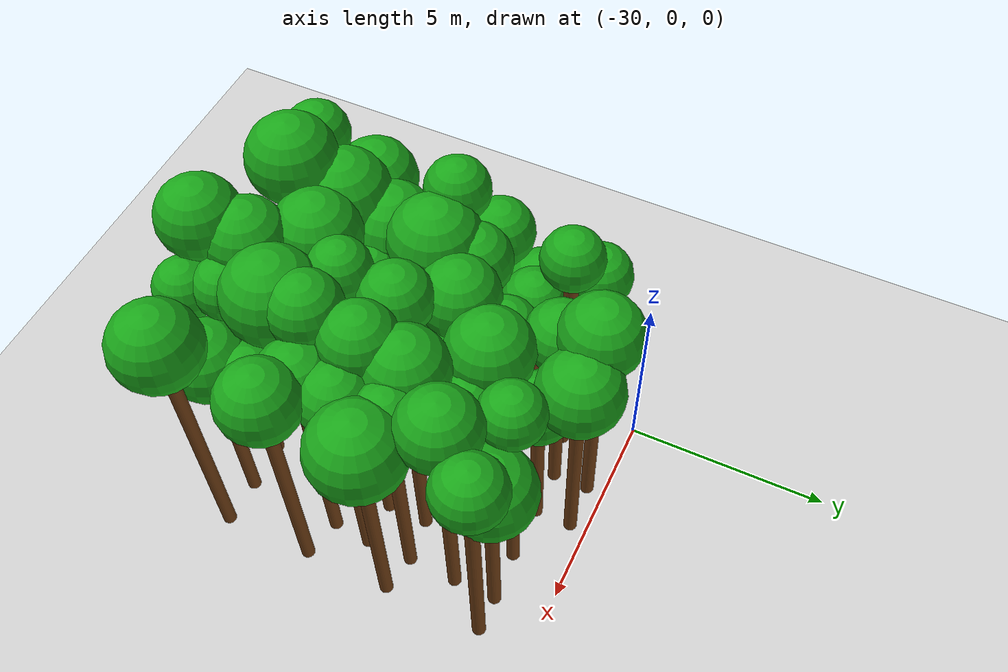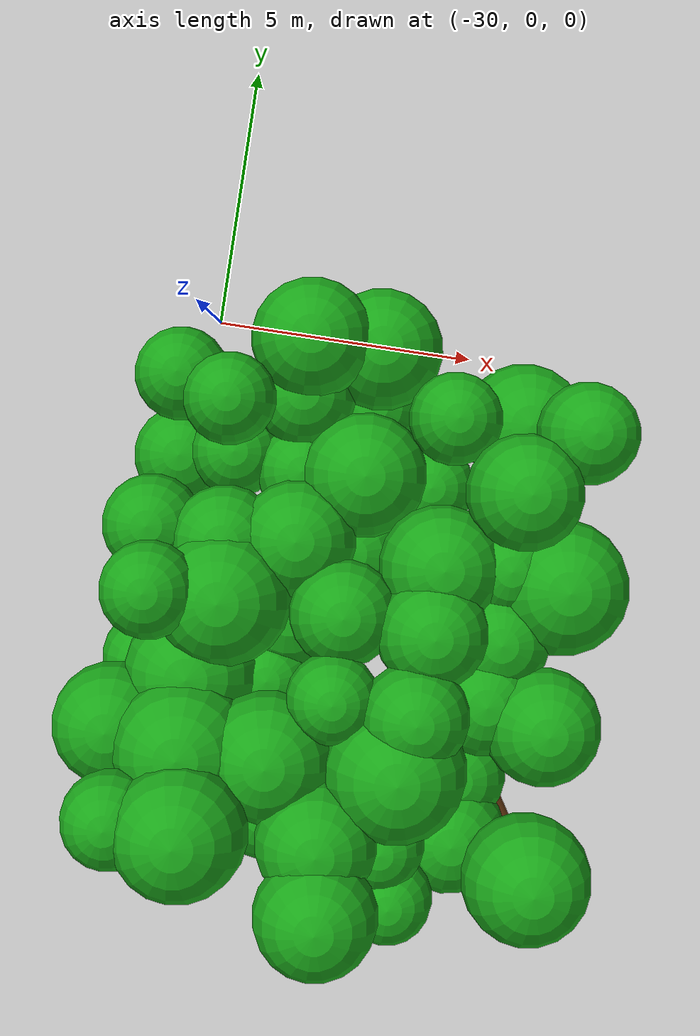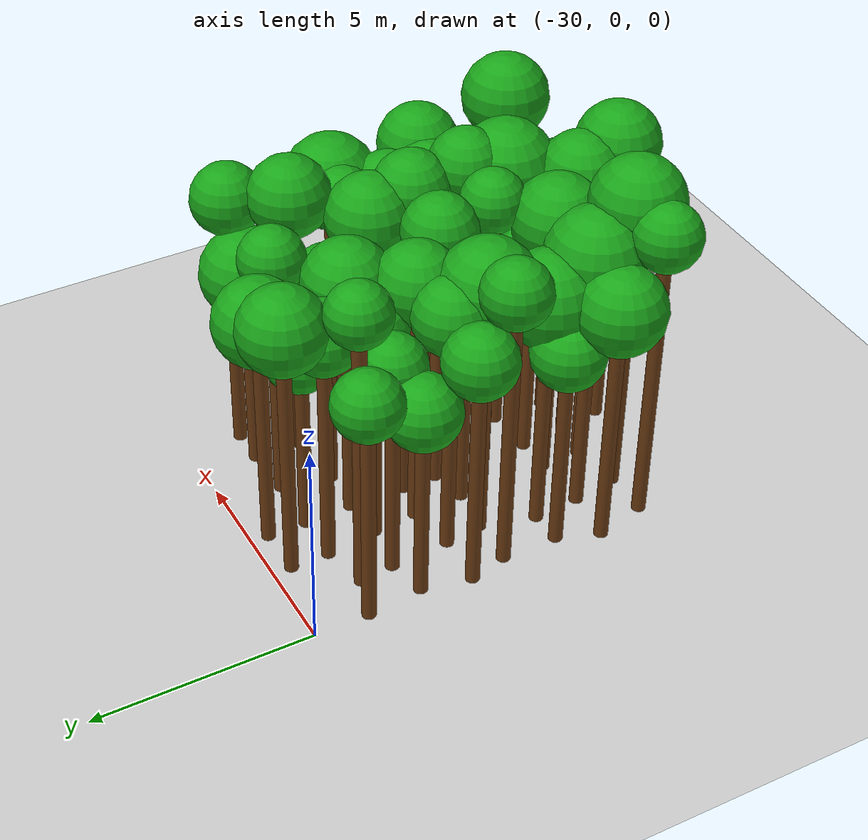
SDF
<sdf version="1.6">
 <world name="forest_world">
  <include><uri>model://sun</uri></include>
  <include><uri>model://ground_plane</uri></include>
  <model name="tree_20_trunk">
   <static>true</static>
   <pose>-29.86 -8.09 3.44 0 0 0</pose>
   <link name="link">
    <collision name="collision">
     <geometry><cylinder><radius>0.16</radius><length>6.88</length></cylinder></geometry>
    </collision>
    <visual name="visual">
     <geometry><cylinder><radius>0.16</radius><length>6.88</length></cylinder></geometry>
     <material><ambient>0.35 0.20 0.05 1</ambient><diffuse>0.45 0.25 0.08 1</diffuse></material>
    </visual>
   </link>
  </model>
  <model name="tree_20_leaf">
   <static>true</static>
   <pose>-29.86 -8.09 7.34 0 0 0</pose>
   <link name="link">
    <collision name="collision"><geometry><sphere><radius>0.76</radius></sphere></geometry></collision>
    <visual name="visual">
     <geometry><sphere><radius>0.76</radius></sphere></geometry>
     <material><ambient>0.05 0.45 0.05 1</ambient><diffuse>0.10 0.65 0.10 1</diffuse></material>
    </visual>
   </link>
  </model>
  <model name="tree_21_trunk">
   <static>true</static>
   <pose>-30.17 -6.90 2.77 0 0 0</pose>
   <link name="link">
    <collision name="collision">
     <geometry><cylinder><radius>0.16</radius><length>5.54</length></cylinder></geometry>
    </collision>
    <visual name="visual">
     <geometry><cylinder><radius>0.16</radius><length>5.54</length></cylinder></geometry>
     <material><ambient>0.35 0.20 0.05 1</ambient><diffuse>0.45 0.25 0.08 1</diffuse></material>
    </visual>
   </link>
  </model>
  <model name="tree_21_leaf">
   <static>true</static>
   <pose>-30.17 -6.90 6.13 0 0 0</pose>
   <link name="link">
    <collision name="collision"><geometry><sphere><radius>0.98</radius></sphere></geometry></collision>
    <visual name="visual">
     <geometry><sphere><radius>0.98</radius></sphere></geometry>
     <material><ambient>0.05 0.45 0.05 1</ambient><diffuse>0.10 0.65 0.10 1</diffuse></material>
    </visual>
   </link>
  </model>
  <model name="tree_22_trunk">
   <static>true</static>
   <pose>-29.83 -5.94 2.33 0 0 0</pose>
   <link name="link">
    <collision name="collision">
     <geometry><cylinder><radius>0.16</radius><length>4.66</length></cylinder></geometry>
    </collision>
    <visual name="visual">
     <geometry><cylinder><radius>0.16</radius><length>4.66</length></cylinder></geometry>
     <material><ambient>0.35 0.20 0.05 1</ambient><diffuse>0.45 0.25 0.08 1</diffuse></material>
    </visual>
   </link>
  </model>
  <model name="tree_22_leaf">
   <static>true</static>
   <pose>-29.83 -5.94 5.16 0 0 0</pose>
   <link name="link">
    <collision name="collision"><geometry><sphere><radius>0.82</radius></sphere></geometry></collision>
    <visual name="visual">
     <geometry><sphere><radius>0.82</radius></sphere></geometry>
     <material><ambient>0.05 0.45 0.05 1</ambient><diffuse>0.10 0.65 0.10 1</diffuse></material>
    </visual>
   </link>
  </model>
  <model name="tree_23_trunk">
   <static>true</static>
   <pose>-29.83 -4.62 3.33 0 0 0</pose>
   <link name="link">
    <collision name="collision">
     <geometry><cylinder><radius>0.16</radius><length>6.66</length></cylinder></geometry>
    </collision>
    <visual name="visual">
     <geometry><cylinder><radius>0.16</radius><length>6.66</length></cylinder></geometry>
     <material><ambient>0.35 0.20 0.05 1</ambient><diffuse>0.45 0.25 0.08 1</diffuse></material>
    </visual>
   </link>
  </model>
  <model name="tree_23_leaf">
   <static>true</static>
   <pose>-29.83 -4.62 7.12 0 0 0</pose>
   <link name="link">
    <collision name="collision"><geometry><sphere><radius>0.76</radius></sphere></geometry></collision>
    <visual name="visual">
     <geometry><sphere><radius>0.76</radius></sphere></geometry>
     <material><ambient>0.05 0.45 0.05 1</ambient><diffuse>0.10 0.65 0.10 1</diffuse></material>
    </visual>
   </link>
  </model>
  <model name="tree_24_trunk">
   <static>true</static>
   <pose>-30.06 -3.72 2.71 0 0 0</pose>
   <link name="link">
    <collision name="collision">
     <geometry><cylinder><radius>0.16</radius><length>5.43</length></cylinder></geometry>
    </collision>
    <visual name="visual">
     <geometry><cylinder><radius>0.16</radius><length>5.43</length></cylinder></geometry>
     <material><ambient>0.35 0.20 0.05 1</ambient><diffuse>0.45 0.25 0.08 1</diffuse></material>
    </visual>
   </link>
  </model>
  <model name="tree_24_leaf">
   <static>true</static>
   <pose>-30.06 -3.72 5.92 0 0 0</pose>
   <link name="link">
    <collision name="collision"><geometry><sphere><radius>0.81</radius></sphere></geometry></collision>
    <visual name="visual">
     <geometry><sphere><radius>0.81</radius></sphere></geometry>
     <material><ambient>0.05 0.45 0.05 1</ambient><diffuse>0.10 0.65 0.10 1</diffuse></material>
    </visual>
   </link>
  </model>
  <model name="tree_25_trunk">
   <static>true</static>
   <pose>-29.83 -2.58 2.21 0 0 0</pose>
   <link name="link">
    <collision name="collision">
     <geometry><cylinder><radius>0.16</radius><length>4.42</length></cylinder></geometry>
    </collision>
    <visual name="visual">
     <geometry><cylinder><radius>0.16</radius><length>4.42</length></cylinder></geometry>
     <material><ambient>0.35 0.20 0.05 1</ambient><diffuse>0.45 0.25 0.08 1</diffuse></material>
    </visual>
   </link>
  </model>
  <model name="tree_25_leaf">
   <static>true</static>
   <pose>-29.83 -2.58 4.92 0 0 0</pose>
   <link name="link">
    <collision name="collision"><geometry><sphere><radius>0.83</radius></sphere></geometry></collision>
    <visual name="visual">
     <geometry><sphere><radius>0.83</radius></sphere></geometry>
     <material><ambient>0.05 0.45 0.05 1</ambient><diffuse>0.10 0.65 0.10 1</diffuse></material>
    </visual>
   </link>
  </model>
  <model name="tree_26_trunk">
   <static>true</static>
   <pose>-29.98 -1.27 2.63 0 0 0</pose>
   <link name="link">
    <collision name="collision">
     <geometry><cylinder><radius>0.16</radius><length>5.26</length></cylinder></geometry>
    </collision>
    <visual name="visual">
     <geometry><cylinder><radius>0.16</radius><length>5.26</length></cylinder></geometry>
     <material><ambient>0.35 0.20 0.05 1</ambient><diffuse>0.45 0.25 0.08 1</diffuse></material>
    </visual>
   </link>
  </model>
  <model name="tree_26_leaf">
   <static>true</static>
   <pose>-29.98 -1.27 5.71 0 0 0</pose>
   <link name="link">
    <collision name="collision"><geometry><sphere><radius>0.76</radius></sphere></geometry></collision>
    <visual name="visual">
     <geometry><sphere><radius>0.76</radius></sphere></geometry>
     <material><ambient>0.05 0.45 0.05 1</ambient><diffuse>0.10 0.65 0.10 1</diffuse></material>
    </visual>
   </link>
  </model>
  <model name="tree_75_trunk">
   <static>true</static>
   <pose>-28.80 -8.07 3.46 0 0 0</pose>
   <link name="link">
    <collision name="collision">
     <geometry><cylinder><radius>0.16</radius><length>6.92</length></cylinder></geometry>
    </collision>
    <visual name="visual">
     <geometry><cylinder><radius>0.16</radius><length>6.92</length></cylinder></geometry>
     <material><ambient>0.35 0.20 0.05 1</ambient><diffuse>0.45 0.25 0.08 1</diffuse></material>
    </visual>
   </link>
  </model>
  <model name="tree_75_leaf">
   <static>true</static>
   <pose>-28.80 -8.07 7.55 0 0 0</pose>
   <link name="link">
    <collision name="collision"><geometry><sphere><radius>1.04</radius></sphere></geometry></collision>
    <visual name="visual">
     <geometry><sphere><radius>1.04</radius></sphere></geometry>
     <material><ambient>0.05 0.45 0.05 1</ambient><diffuse>0.10 0.65 0.10 1</diffuse></material>
    </visual>
   </link>
  </model>
  <model name="tree_76_trunk">
   <static>true</static>
   <pose>-28.99 -7.00 3.02 0 0 0</pose>
   <link name="link">
    <collision name="collision">
     <geometry><cylinder><radius>0.16</radius><length>6.03</length></cylinder></geometry>
    </collision>
    <visual name="visual">
     <geometry><cylinder><radius>0.16</radius><length>6.03</length></cylinder></geometry>
     <material><ambient>0.35 0.20 0.05 1</ambient><diffuse>0.45 0.25 0.08 1</diffuse></material>
    </visual>
   </link>
  </model>
  <model name="tree_76_leaf">
   <static>true</static>
   <pose>-28.99 -7.00 6.69 0 0 0</pose>
   <link name="link">
    <collision name="collision"><geometry><sphere><radius>1.10</radius></sphere></geometry></collision>
    <visual name="visual">
     <geometry><sphere><radius>1.10</radius></sphere></geometry>
     <material><ambient>0.05 0.45 0.05 1</ambient><diffuse>0.10 0.65 0.10 1</diffuse></material>
    </visual>
   </link>
  </model>
  <model name="tree_77_trunk">
   <static>true</static>
   <pose>-29.07 -5.91 2.70 0 0 0</pose>
   <link name="link">
    <collision name="collision">
     <geometry><cylinder><radius>0.16</radius><length>5.40</length></cylinder></geometry>
    </collision>
    <visual name="visual">
     <geometry><cylinder><radius>0.16</radius><length>5.40</length></cylinder></geometry>
     <material><ambient>0.35 0.20 0.05 1</ambient><diffuse>0.45 0.25 0.08 1</diffuse></material>
    </visual>
   </link>
  </model>
  <model name="tree_77_leaf">
   <static>true</static>
   <pose>-29.07 -5.91 6.05 0 0 0</pose>
   <link name="link">
    <collision name="collision"><geometry><sphere><radius>1.08</radius></sphere></geometry></collision>
    <visual name="visual">
     <geometry><sphere><radius>1.08</radius></sphere></geometry>
     <material><ambient>0.05 0.45 0.05 1</ambient><diffuse>0.10 0.65 0.10 1</diffuse></material>
    </visual>
   </link>
  </model>
  <model name="tree_78_trunk">
   <static>true</static>
   <pose>-28.74 -4.64 2.96 0 0 0</pose>
   <link name="link">
    <collision name="collision">
     <geometry><cylinder><radius>0.16</radius><length>5.91</length></cylinder></geometry>
    </collision>
    <visual name="visual">
     <geometry><cylinder><radius>0.16</radius><length>5.91</length></cylinder></geometry>
     <material><ambient>0.35 0.20 0.05 1</ambient><diffuse>0.45 0.25 0.08 1</diffuse></material>
    </visual>
   </link>
  </model>
  <model name="tree_78_leaf">
   <static>true</static>
   <pose>-28.74 -4.64 6.56 0 0 0</pose>
   <link name="link">
    <collision name="collision"><geometry><sphere><radius>1.08</radius></sphere></geometry></collision>
    <visual name="visual">
     <geometry><sphere><radius>1.08</radius></sphere></geometry>
     <material><ambient>0.05 0.45 0.05 1</ambient><diffuse>0.10 0.65 0.10 1</diffuse></material>
    </visual>
   </link>
  </model>
  <model name="tree_79_trunk">
   <static>true</static>
   <pose>-28.85 -3.77 2.85 0 0 0</pose>
   <link name="link">
    <collision name="collision">
     <geometry><cylinder><radius>0.16</radius><length>5.70</length></cylinder></geometry>
    </collision>
    <visual name="visual">
     <geometry><cylinder><radius>0.16</radius><length>5.70</length></cylinder></geometry>
     <material><ambient>0.35 0.20 0.05 1</ambient><diffuse>0.45 0.25 0.08 1</diffuse></material>
    </visual>
   </link>
  </model>
  <model name="tree_79_leaf">
   <static>true</static>
   <pose>-28.85 -3.77 6.22 0 0 0</pose>
   <link name="link">
    <collision name="collision"><geometry><sphere><radius>0.87</radius></sphere></geometry></collision>
    <visual name="visual">
     <geometry><sphere><radius>0.87</radius></sphere></geometry>
     <material><ambient>0.05 0.45 0.05 1</ambient><diffuse>0.10 0.65 0.10 1</diffuse></material>
    </visual>
   </link>
  </model>
  <model name="tree_80_trunk">
   <static>true</static>
   <pose>-28.93 -2.38 2.52 0 0 0</pose>
   <link name="link">
    <collision name="collision">
     <geometry><cylinder><radius>0.16</radius><length>5.05</length></cylinder></geometry>
    </collision>
    <visual name="visual">
     <geometry><cylinder><radius>0.16</radius><length>5.05</length></cylinder></geometry>
     <material><ambient>0.35 0.20 0.05 1</ambient><diffuse>0.45 0.25 0.08 1</diffuse></material>
    </visual>
   </link>
  </model>
  <model name="tree_80_leaf">
   <static>true</static>
   <pose>-28.93 -2.38 5.49 0 0 0</pose>
   <link name="link">
    <collision name="collision"><geometry><sphere><radius>0.74</radius></sphere></geometry></collision>
    <visual name="visual">
     <geometry><sphere><radius>0.74</radius></sphere></geometry>
     <material><ambient>0.05 0.45 0.05 1</ambient><diffuse>0.10 0.65 0.10 1</diffuse></material>
    </visual>
   </link>
  </model>
  <model name="tree_81_trunk">
   <static>true</static>
   <pose>-29.04 -1.57 3.37 0 0 0</pose>
   <link name="link">
    <collision name="collision">
     <geometry><cylinder><radius>0.16</radius><length>6.73</length></cylinder></geometry>
    </collision>
    <visual name="visual">
     <geometry><cylinder><radius>0.16</radius><length>6.73</length></cylinder></geometry>
     <material><ambient>0.35 0.20 0.05 1</ambient><diffuse>0.45 0.25 0.08 1</diffuse></material>
    </visual>
   </link>
  </model>
  <model name="tree_81_leaf">
   <static>true</static>
   <pose>-29.04 -1.57 7.16 0 0 0</pose>
   <link name="link">
    <collision name="collision"><geometry><sphere><radius>0.71</radius></sphere></geometry></collision>
    <visual name="visual">
     <geometry><sphere><radius>0.71</radius></sphere></geometry>
     <material><ambient>0.05 0.45 0.05 1</ambient><diffuse>0.10 0.65 0.10 1</diffuse></material>
    </visual>
   </link>
  </model>
  <model name="tree_130_trunk">
   <static>true</static>
   <pose>-27.64 -7.89 2.68 0 0 0</pose>
   <link name="link">
    <collision name="collision">
     <geometry><cylinder><radius>0.16</radius><length>5.36</length></cylinder></geometry>
    </collision>
    <visual name="visual">
     <geometry><cylinder><radius>0.16</radius><length>5.36</length></cylinder></geometry>
     <material><ambient>0.35 0.20 0.05 1</ambient><diffuse>0.45 0.25 0.08 1</diffuse></material>
    </visual>
   </link>
  </model>
  <model name="tree_130_leaf">
   <static>true</static>
   <pose>-27.64 -7.89 5.87 0 0 0</pose>
   <link name="link">
    <collision name="collision"><geometry><sphere><radius>0.84</radius></sphere></geometry></collision>
    <visual name="visual">
     <geometry><sphere><radius>0.84</radius></sphere></geometry>
     <material><ambient>0.05 0.45 0.05 1</ambient><diffuse>0.10 0.65 0.10 1</diffuse></material>
    </visual>
   </link>
  </model>
  <model name="tree_131_trunk">
   <static>true</static>
   <pose>-27.68 -6.92 3.10 0 0 0</pose>
   <link name="link">
    <collision name="collision">
     <geometry><cylinder><radius>0.16</radius><length>6.21</length></cylinder></geometry>
    </collision>
    <visual name="visual">
     <geometry><cylinder><radius>0.16</radius><length>6.21</length></cylinder></geometry>
     <material><ambient>0.35 0.20 0.05 1</ambient><diffuse>0.45 0.25 0.08 1</diffuse></material>
    </visual>
   </link>
  </model>
  <model name="tree_131_leaf">
   <static>true</static>
   <pose>-27.68 -6.92 6.82 0 0 0</pose>
   <link name="link">
    <collision name="collision"><geometry><sphere><radius>1.02</radius></sphere></geometry></collision>
    <visual name="visual">
     <geometry><sphere><radius>1.02</radius></sphere></geometry>
     <material><ambient>0.05 0.45 0.05 1</ambient><diffuse>0.10 0.65 0.10 1</diffuse></material>
    </visual>
   </link>
  </model>
  <model name="tree_132_trunk">
   <static>true</static>
   <pose>-27.88 -5.86 2.66 0 0 0</pose>
   <link name="link">
    <collision name="collision">
     <geometry><cylinder><radius>0.16</radius><length>5.31</length></cylinder></geometry>
    </collision>
    <visual name="visual">
     <geometry><cylinder><radius>0.16</radius><length>5.31</length></cylinder></geometry>
     <material><ambient>0.35 0.20 0.05 1</ambient><diffuse>0.45 0.25 0.08 1</diffuse></material>
    </visual>
   </link>
  </model>
  <model name="tree_132_leaf">
   <static>true</static>
   <pose>-27.88 -5.86 5.75 0 0 0</pose>
   <link name="link">
    <collision name="collision"><geometry><sphere><radius>0.73</radius></sphere></geometry></collision>
    <visual name="visual">
     <geometry><sphere><radius>0.73</radius></sphere></geometry>
     <material><ambient>0.05 0.45 0.05 1</ambient><diffuse>0.10 0.65 0.10 1</diffuse></material>
    </visual>
   </link>
  </model>
  <model name="tree_133_trunk">
   <static>true</static>
   <pose>-27.68 -4.78 2.44 0 0 0</pose>
   <link name="link">
    <collision name="collision">
     <geometry><cylinder><radius>0.16</radius><length>4.88</length></cylinder></geometry>
    </collision>
    <visual name="visual">
     <geometry><cylinder><radius>0.16</radius><length>4.88</length></cylinder></geometry>
     <material><ambient>0.35 0.20 0.05 1</ambient><diffuse>0.45 0.25 0.08 1</diffuse></material>
    </visual>
   </link>
  </model>
  <model name="tree_133_leaf">
   <static>true</static>
   <pose>-27.68 -4.78 5.50 0 0 0</pose>
   <link name="link">
    <collision name="collision"><geometry><sphere><radius>1.04</radius></sphere></geometry></collision>
    <visual name="visual">
     <geometry><sphere><radius>1.04</radius></sphere></geometry>
     <material><ambient>0.05 0.45 0.05 1</ambient><diffuse>0.10 0.65 0.10 1</diffuse></material>
    </visual>
   </link>
  </model>
  <model name="tree_134_trunk">
   <static>true</static>
   <pose>-27.73 -3.58 2.90 0 0 0</pose>
   <link name="link">
    <collision name="collision">
     <geometry><cylinder><radius>0.16</radius><length>5.80</length></cylinder></geometry>
    </collision>
    <visual name="visual">
     <geometry><cylinder><radius>0.16</radius><length>5.80</length></cylinder></geometry>
     <material><ambient>0.35 0.20 0.05 1</ambient><diffuse>0.45 0.25 0.08 1</diffuse></material>
    </visual>
   </link>
  </model>
  <model name="tree_134_leaf">
   <static>true</static>
   <pose>-27.73 -3.58 6.36 0 0 0</pose>
   <link name="link">
    <collision name="collision"><geometry><sphere><radius>0.93</radius></sphere></geometry></collision>
    <visual name="visual">
     <geometry><sphere><radius>0.93</radius></sphere></geometry>
     <material><ambient>0.05 0.45 0.05 1</ambient><diffuse>0.10 0.65 0.10 1</diffuse></material>
    </visual>
   </link>
  </model>
  <model name="tree_135_trunk">
   <static>true</static>
   <pose>-27.81 -2.53 2.61 0 0 0</pose>
   <link name="link">
    <collision name="collision">
     <geometry><cylinder><radius>0.16</radius><length>5.22</length></cylinder></geometry>
    </collision>
    <visual name="visual">
     <geometry><cylinder><radius>0.16</radius><length>5.22</length></cylinder></geometry>
     <material><ambient>0.35 0.20 0.05 1</ambient><diffuse>0.45 0.25 0.08 1</diffuse></material>
    </visual>
   </link>
  </model>
  <model name="tree_135_leaf">
   <static>true</static>
   <pose>-27.81 -2.53 5.67 0 0 0</pose>
   <link name="link">
    <collision name="collision"><geometry><sphere><radius>0.76</radius></sphere></geometry></collision>
    <visual name="visual">
     <geometry><sphere><radius>0.76</radius></sphere></geometry>
     <material><ambient>0.05 0.45 0.05 1</ambient><diffuse>0.10 0.65 0.10 1</diffuse></material>
    </visual>
   </link>
  </model>
  <model name="tree_136_trunk">
   <static>true</static>
   <pose>-27.96 -1.33 2.73 0 0 0</pose>
   <link name="link">
    <collision name="collision">
     <geometry><cylinder><radius>0.16</radius><length>5.46</length></cylinder></geometry>
    </collision>
    <visual name="visual">
     <geometry><cylinder><radius>0.16</radius><length>5.46</length></cylinder></geometry>
     <material><ambient>0.35 0.20 0.05 1</ambient><diffuse>0.45 0.25 0.08 1</diffuse></material>
    </visual>
   </link>
  </model>
  <model name="tree_136_leaf">
   <static>true</static>
   <pose>-27.96 -1.33 5.95 0 0 0</pose>
   <link name="link">
    <collision name="collision"><geometry><sphere><radius>0.82</radius></sphere></geometry></collision>
    <visual name="visual">
     <geometry><sphere><radius>0.82</radius></sphere></geometry>
     <material><ambient>0.05 0.45 0.05 1</ambient><diffuse>0.10 0.65 0.10 1</diffuse></material>
    </visual>
   </link>
  </model>
  <model name="tree_137_trunk">
   <static>true</static>
   <pose>-27.96 -0.44 2.94 0 0 0</pose>
   <link name="link">
    <collision name="collision">
     <geometry><cylinder><radius>0.16</radius><length>5.88</length></cylinder></geometry>
    </collision>
    <visual name="visual">
     <geometry><cylinder><radius>0.16</radius><length>5.88</length></cylinder></geometry>
     <material><ambient>0.35 0.20 0.05 1</ambient><diffuse>0.45 0.25 0.08 1</diffuse></material>
    </visual>
   </link>
  </model>
  <model name="tree_137_leaf">
   <static>true</static>
   <pose>-27.96 -0.44 6.45 0 0 0</pose>
   <link name="link">
    <collision name="collision"><geometry><sphere><radius>0.96</radius></sphere></geometry></collision>
    <visual name="visual">
     <geometry><sphere><radius>0.96</radius></sphere></geometry>
     <material><ambient>0.05 0.45 0.05 1</ambient><diffuse>0.10 0.65 0.10 1</diffuse></material>
    </visual>
   </link>
  </model>
  <model name="tree_184_trunk">
   <static>true</static>
   <pose>-26.61 -9.03 3.45 0 0 0</pose>
   <link name="link">
    <collision name="collision">
     <geometry><cylinder><radius>0.16</radius><length>6.90</length></cylinder></geometry>
    </collision>
    <visual name="visual">
     <geometry><cylinder><radius>0.16</radius><length>6.90</length></cylinder></geometry>
     <material><ambient>0.35 0.20 0.05 1</ambient><diffuse>0.45 0.25 0.08 1</diffuse></material>
    </visual>
   </link>
  </model>
  <model name="tree_184_leaf">
   <static>true</static>
   <pose>-26.61 -9.03 7.46 0 0 0</pose>
   <link name="link">
    <collision name="collision"><geometry><sphere><radius>0.95</radius></sphere></geometry></collision>
    <visual name="visual">
     <geometry><sphere><radius>0.95</radius></sphere></geometry>
     <material><ambient>0.05 0.45 0.05 1</ambient><diffuse>0.10 0.65 0.10 1</diffuse></material>
    </visual>
   </link>
  </model>
  <model name="tree_185_trunk">
   <static>true</static>
   <pose>-26.75 -8.04 3.26 0 0 0</pose>
   <link name="link">
    <collision name="collision">
     <geometry><cylinder><radius>0.16</radius><length>6.51</length></cylinder></geometry>
    </collision>
    <visual name="visual">
     <geometry><cylinder><radius>0.16</radius><length>6.51</length></cylinder></geometry>
     <material><ambient>0.35 0.20 0.05 1</ambient><diffuse>0.45 0.25 0.08 1</diffuse></material>
    </visual>
   </link>
  </model>
  <model name="tree_185_leaf">
   <static>true</static>
   <pose>-26.75 -8.04 7.08 0 0 0</pose>
   <link name="link">
    <collision name="collision"><geometry><sphere><radius>0.95</radius></sphere></geometry></collision>
    <visual name="visual">
     <geometry><sphere><radius>0.95</radius></sphere></geometry>
     <material><ambient>0.05 0.45 0.05 1</ambient><diffuse>0.10 0.65 0.10 1</diffuse></material>
    </visual>
   </link>
  </model>
  <model name="tree_186_trunk">
   <static>true</static>
   <pose>-26.86 -6.91 2.26 0 0 0</pose>
   <link name="link">
    <collision name="collision">
     <geometry><cylinder><radius>0.16</radius><length>4.51</length></cylinder></geometry>
    </collision>
    <visual name="visual">
     <geometry><cylinder><radius>0.16</radius><length>4.51</length></cylinder></geometry>
     <material><ambient>0.35 0.20 0.05 1</ambient><diffuse>0.45 0.25 0.08 1</diffuse></material>
    </visual>
   </link>
  </model>
  <model name="tree_186_leaf">
   <static>true</static>
   <pose>-26.86 -6.91 5.10 0 0 0</pose>
   <link name="link">
    <collision name="collision"><geometry><sphere><radius>0.98</radius></sphere></geometry></collision>
    <visual name="visual">
     <geometry><sphere><radius>0.98</radius></sphere></geometry>
     <material><ambient>0.05 0.45 0.05 1</ambient><diffuse>0.10 0.65 0.10 1</diffuse></material>
    </visual>
   </link>
  </model>
  <model name="tree_187_trunk">
   <static>true</static>
   <pose>-26.83 -5.84 3.35 0 0 0</pose>
   <link name="link">
    <collision name="collision">
     <geometry><cylinder><radius>0.16</radius><length>6.70</length></cylinder></geometry>
    </collision>
    <visual name="visual">
     <geometry><cylinder><radius>0.16</radius><length>6.70</length></cylinder></geometry>
     <material><ambient>0.35 0.20 0.05 1</ambient><diffuse>0.45 0.25 0.08 1</diffuse></material>
    </visual>
   </link>
  </model>
  <model name="tree_187_leaf">
   <static>true</static>
   <pose>-26.83 -5.84 7.12 0 0 0</pose>
   <link name="link">
    <collision name="collision"><geometry><sphere><radius>0.71</radius></sphere></geometry></collision>
    <visual name="visual">
     <geometry><sphere><radius>0.71</radius></sphere></geometry>
     <material><ambient>0.05 0.45 0.05 1</ambient><diffuse>0.10 0.65 0.10 1</diffuse></material>
    </visual>
   </link>
  </model>
  <model name="tree_188_trunk">
   <static>true</static>
   <pose>-26.85 -4.58 3.14 0 0 0</pose>
   <link name="link">
    <collision name="collision">
     <geometry><cylinder><radius>0.16</radius><length>6.27</length></cylinder></geometry>
    </collision>
    <visual name="visual">
     <geometry><cylinder><radius>0.16</radius><length>6.27</length></cylinder></geometry>
     <material><ambient>0.35 0.20 0.05 1</ambient><diffuse>0.45 0.25 0.08 1</diffuse></material>
    </visual>
   </link>
  </model>
  <model name="tree_188_leaf">
   <static>true</static>
   <pose>-26.85 -4.58 6.78 0 0 0</pose>
   <link name="link">
    <collision name="collision"><geometry><sphere><radius>0.84</radius></sphere></geometry></collision>
    <visual name="visual">
     <geometry><sphere><radius>0.84</radius></sphere></geometry>
     <material><ambient>0.05 0.45 0.05 1</ambient><diffuse>0.10 0.65 0.10 1</diffuse></material>
    </visual>
   </link>
  </model>
  <model name="tree_189_trunk">
   <static>true</static>
   <pose>-26.86 -3.75 2.15 0 0 0</pose>
   <link name="link">
    <collision name="collision">
     <geometry><cylinder><radius>0.16</radius><length>4.30</length></cylinder></geometry>
    </collision>
    <visual name="visual">
     <geometry><cylinder><radius>0.16</radius><length>4.30</length></cylinder></geometry>
     <material><ambient>0.35 0.20 0.05 1</ambient><diffuse>0.45 0.25 0.08 1</diffuse></material>
    </visual>
   </link>
  </model>
  <model name="tree_189_leaf">
   <static>true</static>
   <pose>-26.86 -3.75 4.84 0 0 0</pose>
   <link name="link">
    <collision name="collision"><geometry><sphere><radius>0.90</radius></sphere></geometry></collision>
    <visual name="visual">
     <geometry><sphere><radius>0.90</radius></sphere></geometry>
     <material><ambient>0.05 0.45 0.05 1</ambient><diffuse>0.10 0.65 0.10 1</diffuse></material>
    </visual>
   </link>
  </model>
  <model name="tree_190_trunk">
   <static>true</static>
   <pose>-26.83 -2.44 2.79 0 0 0</pose>
   <link name="link">
    <collision name="collision">
     <geometry><cylinder><radius>0.16</radius><length>5.58</length></cylinder></geometry>
    </collision>
    <visual name="visual">
     <geometry><cylinder><radius>0.16</radius><length>5.58</length></cylinder></geometry>
     <material><ambient>0.35 0.20 0.05 1</ambient><diffuse>0.45 0.25 0.08 1</diffuse></material>
    </visual>
   </link>
  </model>
  <model name="tree_190_leaf">
   <static>true</static>
   <pose>-26.83 -2.44 6.18 0 0 0</pose>
   <link name="link">
    <collision name="collision"><geometry><sphere><radius>0.99</radius></sphere></geometry></collision>
    <visual name="visual">
     <geometry><sphere><radius>0.99</radius></sphere></geometry>
     <material><ambient>0.05 0.45 0.05 1</ambient><diffuse>0.10 0.65 0.10 1</diffuse></material>
    </visual>
   </link>
  </model>
  <model name="tree_191_trunk">
   <static>true</static>
   <pose>-26.85 -1.33 2.11 0 0 0</pose>
   <link name="link">
    <collision name="collision">
     <geometry><cylinder><radius>0.16</radius><length>4.23</length></cylinder></geometry>
    </collision>
    <visual name="visual">
     <geometry><cylinder><radius>0.16</radius><length>4.23</length></cylinder></geometry>
     <material><ambient>0.35 0.20 0.05 1</ambient><diffuse>0.45 0.25 0.08 1</diffuse></material>
    </visual>
   </link>
  </model>
  <model name="tree_191_leaf">
   <static>true</static>
   <pose>-26.85 -1.33 4.73 0 0 0</pose>
   <link name="link">
    <collision name="collision"><geometry><sphere><radius>0.83</radius></sphere></geometry></collision>
    <visual name="visual">
     <geometry><sphere><radius>0.83</radius></sphere></geometry>
     <material><ambient>0.05 0.45 0.05 1</ambient><diffuse>0.10 0.65 0.10 1</diffuse></material>
    </visual>
   </link>
  </model>
  <model name="tree_192_trunk">
   <static>true</static>
   <pose>-26.85 -0.42 2.66 0 0 0</pose>
   <link name="link">
    <collision name="collision">
     <geometry><cylinder><radius>0.16</radius><length>5.32</length></cylinder></geometry>
    </collision>
    <visual name="visual">
     <geometry><cylinder><radius>0.16</radius><length>5.32</length></cylinder></geometry>
     <material><ambient>0.35 0.20 0.05 1</ambient><diffuse>0.45 0.25 0.08 1</diffuse></material>
    </visual>
   </link>
  </model>
  <model name="tree_192_leaf">
   <static>true</static>
   <pose>-26.85 -0.42 5.91 0 0 0</pose>
   <link name="link">
    <collision name="collision"><geometry><sphere><radius>0.98</radius></sphere></geometry></collision>
    <visual name="visual">
     <geometry><sphere><radius>0.98</radius></sphere></geometry>
     <material><ambient>0.05 0.45 0.05 1</ambient><diffuse>0.10 0.65 0.10 1</diffuse></material>
    </visual>
   </link>
  </model>
  <model name="tree_239_trunk">
   <static>true</static>
   <pose>-25.52 -8.92 2.98 0 0 0</pose>
   <link name="link">
    <collision name="collision">
     <geometry><cylinder><radius>0.16</radius><length>5.95</length></cylinder></geometry>
    </collision>
    <visual name="visual">
     <geometry><cylinder><radius>0.16</radius><length>5.95</length></cylinder></geometry>
     <material><ambient>0.35 0.20 0.05 1</ambient><diffuse>0.45 0.25 0.08 1</diffuse></material>
    </visual>
   </link>
  </model>
  <model name="tree_239_leaf">
   <static>true</static>
   <pose>-25.52 -8.92 6.38 0 0 0</pose>
   <link name="link">
    <collision name="collision"><geometry><sphere><radius>0.72</radius></sphere></geometry></collision>
    <visual name="visual">
     <geometry><sphere><radius>0.72</radius></sphere></geometry>
     <material><ambient>0.05 0.45 0.05 1</ambient><diffuse>0.10 0.65 0.10 1</diffuse></material>
    </visual>
   </link>
  </model>
  <model name="tree_240_trunk">
   <static>true</static>
   <pose>-25.78 -8.06 3.06 0 0 0</pose>
   <link name="link">
    <collision name="collision">
     <geometry><cylinder><radius>0.16</radius><length>6.12</length></cylinder></geometry>
    </collision>
    <visual name="visual">
     <geometry><cylinder><radius>0.16</radius><length>6.12</length></cylinder></geometry>
     <material><ambient>0.35 0.20 0.05 1</ambient><diffuse>0.45 0.25 0.08 1</diffuse></material>
    </visual>
   </link>
  </model>
  <model name="tree_240_leaf">
   <static>true</static>
   <pose>-25.78 -8.06 6.56 0 0 0</pose>
   <link name="link">
    <collision name="collision"><geometry><sphere><radius>0.72</radius></sphere></geometry></collision>
    <visual name="visual">
     <geometry><sphere><radius>0.72</radius></sphere></geometry>
     <material><ambient>0.05 0.45 0.05 1</ambient><diffuse>0.10 0.65 0.10 1</diffuse></material>
    </visual>
   </link>
  </model>
  <model name="tree_241_trunk">
   <static>true</static>
   <pose>-25.72 -6.81 3.17 0 0 0</pose>
   <link name="link">
    <collision name="collision">
     <geometry><cylinder><radius>0.16</radius><length>6.35</length></cylinder></geometry>
    </collision>
    <visual name="visual">
     <geometry><cylinder><radius>0.16</radius><length>6.35</length></cylinder></geometry>
     <material><ambient>0.35 0.20 0.05 1</ambient><diffuse>0.45 0.25 0.08 1</diffuse></material>
    </visual>
   </link>
  </model>
  <model name="tree_241_leaf">
   <static>true</static>
   <pose>-25.72 -6.81 7.01 0 0 0</pose>
   <link name="link">
    <collision name="collision"><geometry><sphere><radius>1.10</radius></sphere></geometry></collision>
    <visual name="visual">
     <geometry><sphere><radius>1.10</radius></sphere></geometry>
     <material><ambient>0.05 0.45 0.05 1</ambient><diffuse>0.10 0.65 0.10 1</diffuse></material>
    </visual>
   </link>
  </model>
  <model name="tree_242_trunk">
   <static>true</static>
   <pose>-25.57 -5.91 3.37 0 0 0</pose>
   <link name="link">
    <collision name="collision">
     <geometry><cylinder><radius>0.16</radius><length>6.75</length></cylinder></geometry>
    </collision>
    <visual name="visual">
     <geometry><cylinder><radius>0.16</radius><length>6.75</length></cylinder></geometry>
     <material><ambient>0.35 0.20 0.05 1</ambient><diffuse>0.45 0.25 0.08 1</diffuse></material>
    </visual>
   </link>
  </model>
  <model name="tree_242_leaf">
   <static>true</static>
   <pose>-25.57 -5.91 7.25 0 0 0</pose>
   <link name="link">
    <collision name="collision"><geometry><sphere><radius>0.84</radius></sphere></geometry></collision>
    <visual name="visual">
     <geometry><sphere><radius>0.84</radius></sphere></geometry>
     <material><ambient>0.05 0.45 0.05 1</ambient><diffuse>0.10 0.65 0.10 1</diffuse></material>
    </visual>
   </link>
  </model>
  <model name="tree_243_trunk">
   <static>true</static>
   <pose>-25.47 -4.66 3.24 0 0 0</pose>
   <link name="link">
    <collision name="collision">
     <geometry><cylinder><radius>0.16</radius><length>6.47</length></cylinder></geometry>
    </collision>
    <visual name="visual">
     <geometry><cylinder><radius>0.16</radius><length>6.47</length></cylinder></geometry>
     <material><ambient>0.35 0.20 0.05 1</ambient><diffuse>0.45 0.25 0.08 1</diffuse></material>
    </visual>
   </link>
  </model>
  <model name="tree_243_leaf">
   <static>true</static>
   <pose>-25.47 -4.66 6.99 0 0 0</pose>
   <link name="link">
    <collision name="collision"><geometry><sphere><radius>0.87</radius></sphere></geometry></collision>
    <visual name="visual">
     <geometry><sphere><radius>0.87</radius></sphere></geometry>
     <material><ambient>0.05 0.45 0.05 1</ambient><diffuse>0.10 0.65 0.10 1</diffuse></material>
    </visual>
   </link>
  </model>
  <model name="tree_244_trunk">
   <static>true</static>
   <pose>-25.46 -3.66 3.01 0 0 0</pose>
   <link name="link">
    <collision name="collision">
     <geometry><cylinder><radius>0.16</radius><length>6.01</length></cylinder></geometry>
    </collision>
    <visual name="visual">
     <geometry><cylinder><radius>0.16</radius><length>6.01</length></cylinder></geometry>
     <material><ambient>0.35 0.20 0.05 1</ambient><diffuse>0.45 0.25 0.08 1</diffuse></material>
    </visual>
   </link>
  </model>
  <model name="tree_244_leaf">
   <static>true</static>
   <pose>-25.46 -3.66 6.60 0 0 0</pose>
   <link name="link">
    <collision name="collision"><geometry><sphere><radius>0.97</radius></sphere></geometry></collision>
    <visual name="visual">
     <geometry><sphere><radius>0.97</radius></sphere></geometry>
     <material><ambient>0.05 0.45 0.05 1</ambient><diffuse>0.10 0.65 0.10 1</diffuse></material>
    </visual>
   </link>
  </model>
  <model name="tree_245_trunk">
   <static>true</static>
   <pose>-25.77 -2.49 2.58 0 0 0</pose>
   <link name="link">
    <collision name="collision">
     <geometry><cylinder><radius>0.16</radius><length>5.17</length></cylinder></geometry>
    </collision>
    <visual name="visual">
     <geometry><cylinder><radius>0.16</radius><length>5.17</length></cylinder></geometry>
     <material><ambient>0.35 0.20 0.05 1</ambient><diffuse>0.45 0.25 0.08 1</diffuse></material>
    </visual>
   </link>
  </model>
  <model name="tree_245_leaf">
   <static>true</static>
   <pose>-25.77 -2.49 5.62 0 0 0</pose>
   <link name="link">
    <collision name="collision"><geometry><sphere><radius>0.74</radius></sphere></geometry></collision>
    <visual name="visual">
     <geometry><sphere><radius>0.74</radius></sphere></geometry>
     <material><ambient>0.05 0.45 0.05 1</ambient><diffuse>0.10 0.65 0.10 1</diffuse></material>
    </visual>
   </link>
  </model>
  <model name="tree_246_trunk">
   <static>true</static>
   <pose>-25.55 -1.35 2.94 0 0 0</pose>
   <link name="link">
    <collision name="collision">
     <geometry><cylinder><radius>0.16</radius><length>5.88</length></cylinder></geometry>
    </collision>
    <visual name="visual">
     <geometry><cylinder><radius>0.16</radius><length>5.88</length></cylinder></geometry>
     <material><ambient>0.35 0.20 0.05 1</ambient><diffuse>0.45 0.25 0.08 1</diffuse></material>
    </visual>
   </link>
  </model>
  <model name="tree_246_leaf">
   <static>true</static>
   <pose>-25.55 -1.35 6.32 0 0 0</pose>
   <link name="link">
    <collision name="collision"><geometry><sphere><radius>0.74</radius></sphere></geometry></collision>
    <visual name="visual">
     <geometry><sphere><radius>0.74</radius></sphere></geometry>
     <material><ambient>0.05 0.45 0.05 1</ambient><diffuse>0.10 0.65 0.10 1</diffuse></material>
    </visual>
   </link>
  </model>
  <model name="tree_295_trunk">
   <static>true</static>
   <pose>-24.62 -8.03 2.41 0 0 0</pose>
   <link name="link">
    <collision name="collision">
     <geometry><cylinder><radius>0.16</radius><length>4.82</length></cylinder></geometry>
    </collision>
    <visual name="visual">
     <geometry><cylinder><radius>0.16</radius><length>4.82</length></cylinder></geometry>
     <material><ambient>0.35 0.20 0.05 1</ambient><diffuse>0.45 0.25 0.08 1</diffuse></material>
    </visual>
   </link>
  </model>
  <model name="tree_295_leaf">
   <static>true</static>
   <pose>-24.62 -8.03 5.39 0 0 0</pose>
   <link name="link">
    <collision name="collision"><geometry><sphere><radius>0.95</radius></sphere></geometry></collision>
    <visual name="visual">
     <geometry><sphere><radius>0.95</radius></sphere></geometry>
     <material><ambient>0.05 0.45 0.05 1</ambient><diffuse>0.10 0.65 0.10 1</diffuse></material>
    </visual>
   </link>
  </model>
  <model name="tree_296_trunk">
   <static>true</static>
   <pose>-24.67 -7.07 2.32 0 0 0</pose>
   <link name="link">
    <collision name="collision">
     <geometry><cylinder><radius>0.16</radius><length>4.64</length></cylinder></geometry>
    </collision>
    <visual name="visual">
     <geometry><cylinder><radius>0.16</radius><length>4.64</length></cylinder></geometry>
     <material><ambient>0.35 0.20 0.05 1</ambient><diffuse>0.45 0.25 0.08 1</diffuse></material>
    </visual>
   </link>
  </model>
  <model name="tree_296_leaf">
   <static>true</static>
   <pose>-24.67 -7.07 5.17 0 0 0</pose>
   <link name="link">
    <collision name="collision"><geometry><sphere><radius>0.89</radius></sphere></geometry></collision>
    <visual name="visual">
     <geometry><sphere><radius>0.89</radius></sphere></geometry>
     <material><ambient>0.05 0.45 0.05 1</ambient><diffuse>0.10 0.65 0.10 1</diffuse></material>
    </visual>
   </link>
  </model>
  <model name="tree_297_trunk">
   <static>true</static>
   <pose>-24.50 -5.62 2.92 0 0 0</pose>
   <link name="link">
    <collision name="collision">
     <geometry><cylinder><radius>0.16</radius><length>5.84</length></cylinder></geometry>
    </collision>
    <visual name="visual">
     <geometry><cylinder><radius>0.16</radius><length>5.84</length></cylinder></geometry>
     <material><ambient>0.35 0.20 0.05 1</ambient><diffuse>0.45 0.25 0.08 1</diffuse></material>
    </visual>
   </link>
  </model>
  <model name="tree_297_leaf">
   <static>true</static>
   <pose>-24.50 -5.62 6.37 0 0 0</pose>
   <link name="link">
    <collision name="collision"><geometry><sphere><radius>0.89</radius></sphere></geometry></collision>
    <visual name="visual">
     <geometry><sphere><radius>0.89</radius></sphere></geometry>
     <material><ambient>0.05 0.45 0.05 1</ambient><diffuse>0.10 0.65 0.10 1</diffuse></material>
    </visual>
   </link>
  </model>
  <model name="tree_298_trunk">
   <static>true</static>
   <pose>-24.41 -4.67 2.93 0 0 0</pose>
   <link name="link">
    <collision name="collision">
     <geometry><cylinder><radius>0.16</radius><length>5.86</length></cylinder></geometry>
    </collision>
    <visual name="visual">
     <geometry><cylinder><radius>0.16</radius><length>5.86</length></cylinder></geometry>
     <material><ambient>0.35 0.20 0.05 1</ambient><diffuse>0.45 0.25 0.08 1</diffuse></material>
    </visual>
   </link>
  </model>
  <model name="tree_298_leaf">
   <static>true</static>
   <pose>-24.41 -4.67 6.37 0 0 0</pose>
   <link name="link">
    <collision name="collision"><geometry><sphere><radius>0.85</radius></sphere></geometry></collision>
    <visual name="visual">
     <geometry><sphere><radius>0.85</radius></sphere></geometry>
     <material><ambient>0.05 0.45 0.05 1</ambient><diffuse>0.10 0.65 0.10 1</diffuse></material>
    </visual>
   </link>
  </model>
  <model name="tree_299_trunk">
   <static>true</static>
   <pose>-24.42 -3.54 2.99 0 0 0</pose>
   <link name="link">
    <collision name="collision">
     <geometry><cylinder><radius>0.16</radius><length>5.98</length></cylinder></geometry>
    </collision>
    <visual name="visual">
     <geometry><cylinder><radius>0.16</radius><length>5.98</length></cylinder></geometry>
     <material><ambient>0.35 0.20 0.05 1</ambient><diffuse>0.45 0.25 0.08 1</diffuse></material>
    </visual>
   </link>
  </model>
  <model name="tree_299_leaf">
   <static>true</static>
   <pose>-24.42 -3.54 6.44 0 0 0</pose>
   <link name="link">
    <collision name="collision"><geometry><sphere><radius>0.76</radius></sphere></geometry></collision>
    <visual name="visual">
     <geometry><sphere><radius>0.76</radius></sphere></geometry>
     <material><ambient>0.05 0.45 0.05 1</ambient><diffuse>0.10 0.65 0.10 1</diffuse></material>
    </visual>
   </link>
  </model>
  <model name="tree_300_trunk">
   <static>true</static>
   <pose>-24.37 -2.33 3.16 0 0 0</pose>
   <link name="link">
    <collision name="collision">
     <geometry><cylinder><radius>0.16</radius><length>6.31</length></cylinder></geometry>
    </collision>
    <visual name="visual">
     <geometry><cylinder><radius>0.16</radius><length>6.31</length></cylinder></geometry>
     <material><ambient>0.35 0.20 0.05 1</ambient><diffuse>0.45 0.25 0.08 1</diffuse></material>
    </visual>
   </link>
  </model>
  <model name="tree_300_leaf">
   <static>true</static>
   <pose>-24.37 -2.33 6.87 0 0 0</pose>
   <link name="link">
    <collision name="collision"><geometry><sphere><radius>0.92</radius></sphere></geometry></collision>
    <visual name="visual">
     <geometry><sphere><radius>0.92</radius></sphere></geometry>
     <material><ambient>0.05 0.45 0.05 1</ambient><diffuse>0.10 0.65 0.10 1</diffuse></material>
    </visual>
   </link>
  </model>
  <model name="tree_301_trunk">
   <static>true</static>
   <pose>-24.35 -1.28 2.31 0 0 0</pose>
   <link name="link">
    <collision name="collision">
     <geometry><cylinder><radius>0.16</radius><length>4.61</length></cylinder></geometry>
    </collision>
    <visual name="visual">
     <geometry><cylinder><radius>0.16</radius><length>4.61</length></cylinder></geometry>
     <material><ambient>0.35 0.20 0.05 1</ambient><diffuse>0.45 0.25 0.08 1</diffuse></material>
    </visual>
   </link>
  </model>
  <model name="tree_301_leaf">
   <static>true</static>
   <pose>-24.35 -1.28 5.23 0 0 0</pose>
   <link name="link">
    <collision name="collision"><geometry><sphere><radius>1.03</radius></sphere></geometry></collision>
    <visual name="visual">
     <geometry><sphere><radius>1.03</radius></sphere></geometry>
     <material><ambient>0.05 0.45 0.05 1</ambient><diffuse>0.10 0.65 0.10 1</diffuse></material>
    </visual>
   </link>
  </model>
  <model name="tree_350_trunk">
   <static>true</static>
   <pose>-23.55 -8.07 3.33 0 0 0</pose>
   <link name="link">
    <collision name="collision">
     <geometry><cylinder><radius>0.16</radius><length>6.66</length></cylinder></geometry>
    </collision>
    <visual name="visual">
     <geometry><cylinder><radius>0.16</radius><length>6.66</length></cylinder></geometry>
     <material><ambient>0.35 0.20 0.05 1</ambient><diffuse>0.45 0.25 0.08 1</diffuse></material>
    </visual>
   </link>
  </model>
  <model name="tree_350_leaf">
   <static>true</static>
   <pose>-23.55 -8.07 7.26 0 0 0</pose>
   <link name="link">
    <collision name="collision"><geometry><sphere><radius>0.99</radius></sphere></geometry></collision>
    <visual name="visual">
     <geometry><sphere><radius>0.99</radius></sphere></geometry>
     <material><ambient>0.05 0.45 0.05 1</ambient><diffuse>0.10 0.65 0.10 1</diffuse></material>
    </visual>
   </link>
  </model>
  <model name="tree_352_trunk">
   <static>true</static>
   <pose>-23.56 -5.86 3.07 0 0 0</pose>
   <link name="link">
    <collision name="collision">
     <geometry><cylinder><radius>0.16</radius><length>6.14</length></cylinder></geometry>
    </collision>
    <visual name="visual">
     <geometry><cylinder><radius>0.16</radius><length>6.14</length></cylinder></geometry>
     <material><ambient>0.35 0.20 0.05 1</ambient><diffuse>0.45 0.25 0.08 1</diffuse></material>
    </visual>
   </link>
  </model>
  <model name="tree_352_leaf">
   <static>true</static>
   <pose>-23.56 -5.86 6.69 0 0 0</pose>
   <link name="link">
    <collision name="collision"><geometry><sphere><radius>0.92</radius></sphere></geometry></collision>
    <visual name="visual">
     <geometry><sphere><radius>0.92</radius></sphere></geometry>
     <material><ambient>0.05 0.45 0.05 1</ambient><diffuse>0.10 0.65 0.10 1</diffuse></material>
    </visual>
   </link>
  </model>
  <model name="tree_354_trunk">
   <static>true</static>
   <pose>-23.54 -3.72 2.85 0 0 0</pose>
   <link name="link">
    <collision name="collision">
     <geometry><cylinder><radius>0.16</radius><length>5.70</length></cylinder></geometry>
    </collision>
    <visual name="visual">
     <geometry><cylinder><radius>0.16</radius><length>5.70</length></cylinder></geometry>
     <material><ambient>0.35 0.20 0.05 1</ambient><diffuse>0.45 0.25 0.08 1</diffuse></material>
    </visual>
   </link>
  </model>
  <model name="tree_354_leaf">
   <static>true</static>
   <pose>-23.54 -3.72 6.35 0 0 0</pose>
   <link name="link">
    <collision name="collision"><geometry><sphere><radius>1.08</radius></sphere></geometry></collision>
    <visual name="visual">
     <geometry><sphere><radius>1.08</radius></sphere></geometry>
     <material><ambient>0.05 0.45 0.05 1</ambient><diffuse>0.10 0.65 0.10 1</diffuse></material>
    </visual>
   </link>
  </model>
  <model name="tree_356_trunk">
   <static>true</static>
   <pose>-23.51 -1.28 3.07 0 0 0</pose>
   <link name="link">
    <collision name="collision">
     <geometry><cylinder><radius>0.16</radius><length>6.15</length></cylinder></geometry>
    </collision>
    <visual name="visual">
     <geometry><cylinder><radius>0.16</radius><length>6.15</length></cylinder></geometry>
     <material><ambient>0.35 0.20 0.05 1</ambient><diffuse>0.45 0.25 0.08 1</diffuse></material>
    </visual>
   </link>
  </model>
  <model name="tree_356_leaf">
   <static>true</static>
   <pose>-23.51 -1.28 6.63 0 0 0</pose>
   <link name="link">
    <collision name="collision"><geometry><sphere><radius>0.81</radius></sphere></geometry></collision>
    <visual name="visual">
     <geometry><sphere><radius>0.81</radius></sphere></geometry>
     <material><ambient>0.05 0.45 0.05 1</ambient><diffuse>0.10 0.65 0.10 1</diffuse></material>
    </visual>
   </link>
  </model>
 </world>
</sdf>
